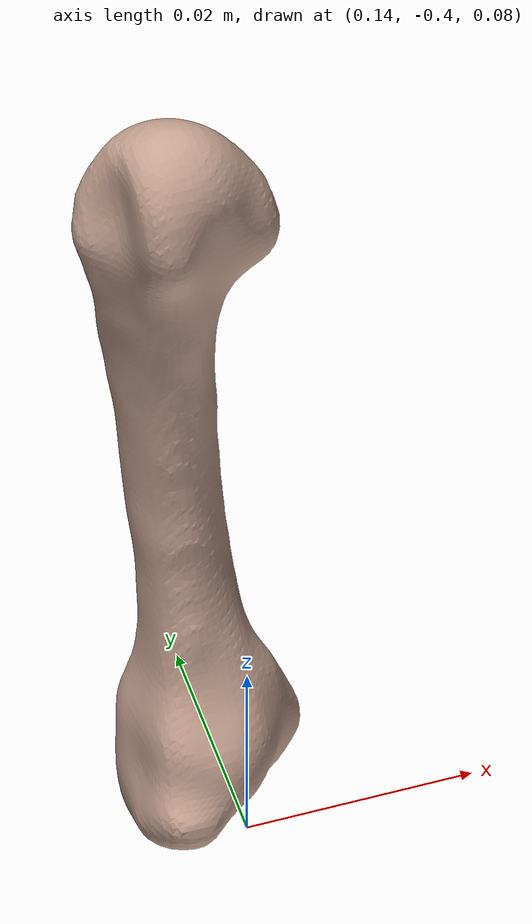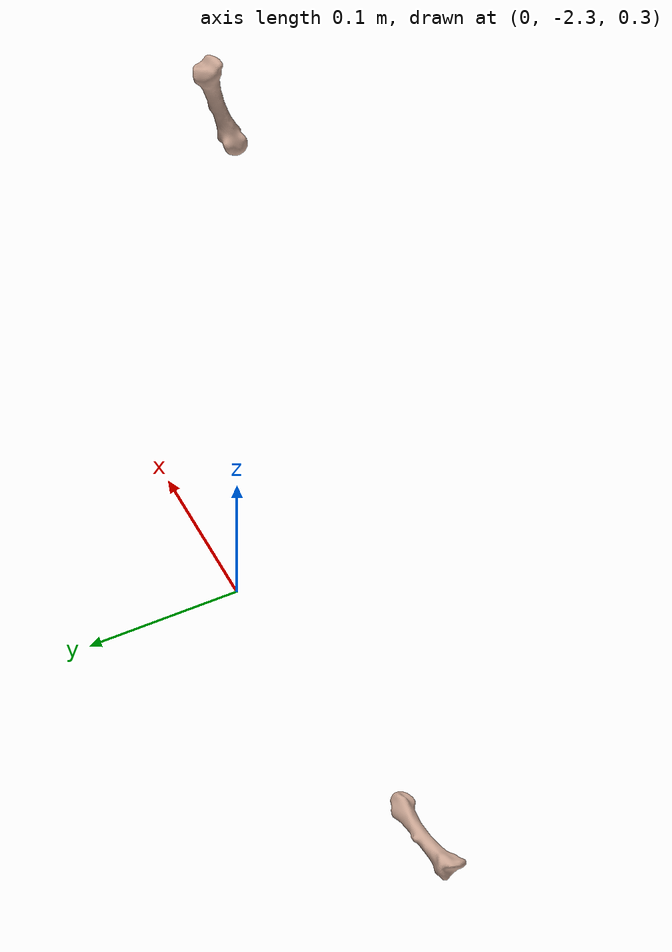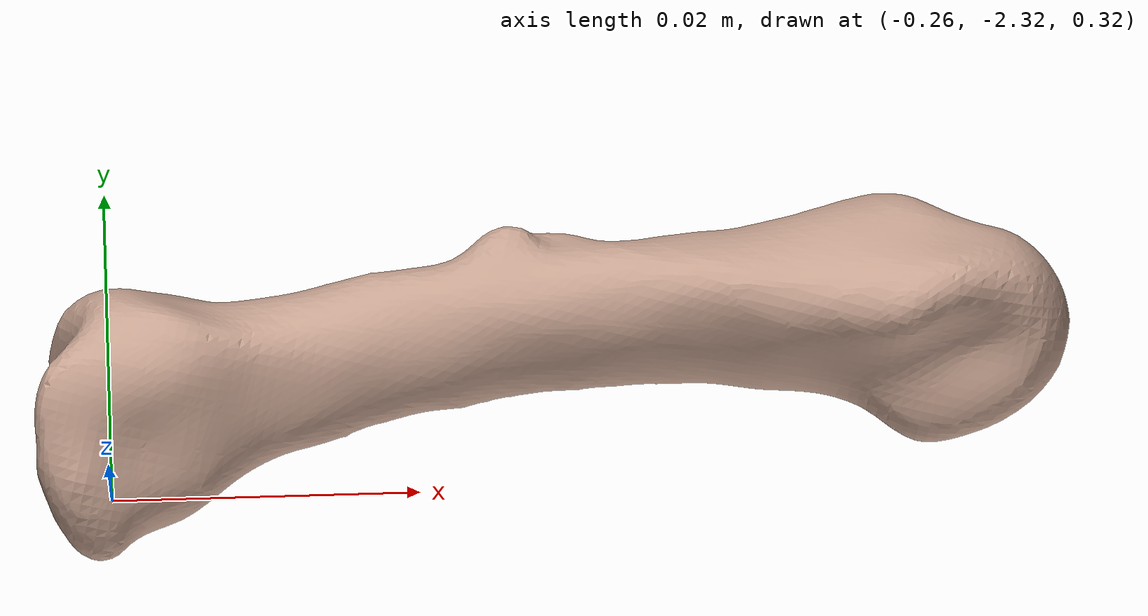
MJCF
<mujoco model="hand model">
    <default class="zf">
        <geom type="mesh" contype="3" conaffinity="2" group="0" friction="0.7" solref="0.015 1"
            solimp="0.95 0.99 0.003" rgba="0.78 0.64 0.57 0.9" />
    </default>
    <compiler angle="radian" meshdir="../../assets/meshes" texturedir="assets" />
    <asset>
        <mesh file="Segmentation_ZF_DIP.stl" name="ZF-DIP" scale="0.001 0.001 0.001" />
        <mesh file="Segmentation_ZF_PIP.stl" name="ZF-PIP1" scale="0.001 0.001 0.001" />
        <mesh file="zf_mid2.stl" name="ZF-PIP2" scale="0.001 0.001 0.001" />
        <mesh file="zf_mcp.stl" name="ZF-MCP" scale="0.001 0.001 0.001" />
        <mesh file="Segmentation_DAU_Osmetacarpale_1.stl" name="DAU-MCP" scale="0.001 0.001 0.001" />
        <mesh file="Segmentation_DAU_Phalax_proximalis.stl" name="DAU-PIP" scale="0.001 0.001 0.001" />
        <mesh file="Segmentation_DAU_DIP.stl" name="DAU-DIP" scale="0.001 0.001 0.001" />
        <mesh file="backhand.stl" name="BASE" scale="0.001 0.001 0.001" />
        <mesh file="rest.stl" name="OTHER" scale="0.001 0.001 0.001" />
    </asset>

    <compiler angle="radian" />
    <option integrator="RK4" />

    <worldbody>

        <body name="b1" pos="0.1 -0.2 0.3" quat="1 0.0 0.0 0.0">
            <geom class="zf" mesh="ZF-MCP" type="mesh" />

            <body name="b2" pos="-0.1 -2 0.1" quat="1 0.2588 1 0.0000">

                <geom class="zf" mesh="ZF-MCP" type="mesh" />

                <body name="b3" pos="-0.1 -0.1 0.1" quat="1 1 1 0.0000">

                <body name="tip" pos="0.0 0.0 1.0" quat="1.0 0.0 0.0 0.0"/>
                    <geom class="zf" mesh="ZF-MCP" type="mesh" />

                    <joint name="ZF_PIP1_to_ZF_DIP" axis="0.8 0.4 0.3" limited="true"
                    pos="0.05 -0.21 -0.11" range="-4 4" type="hinge" />
                </body>
            </body>
        </body>

    </worldbody>
</mujoco>
